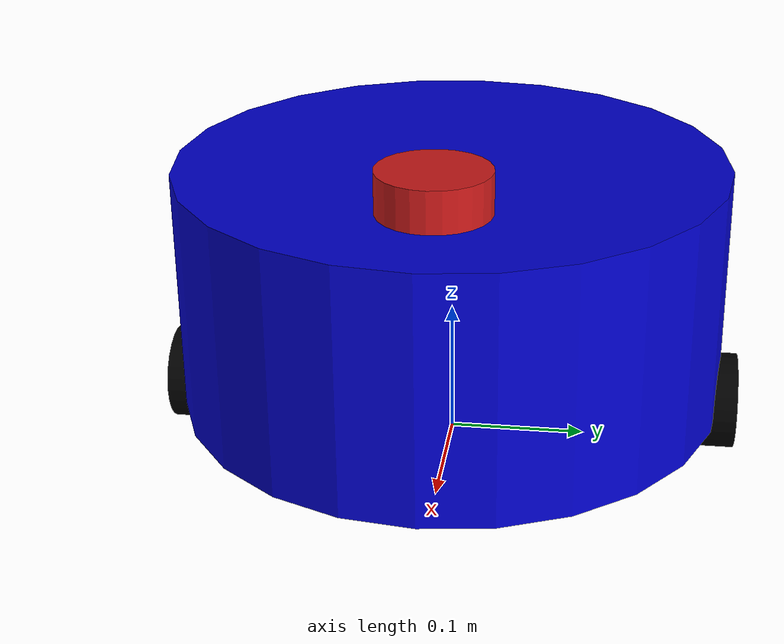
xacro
<?xml version="1.0"?>
<robot xmlns:xacro="http://www.ros.org/wiki/xacro" name="voice_nav_robot">
  <xacro:arg name="controllers_file" default="" />
  <xacro:arg name="laser_update_rate" default="10" />

  <!-- 车体参数：X 前方，Y 左方，Z 上方 -->
  <xacro:property name="base_radius" value="0.20" />
  <xacro:property name="base_height" value="0.18" />
  <xacro:property name="wheel_radius" value="0.035" />
  <xacro:property name="wheel_width" value="0.025" />
  <xacro:property name="wheel_y" value="0.20" />
  <xacro:property name="caster_radius" value="0.045" />
  <xacro:property name="laser_radius" value="0.04" />
  <xacro:property name="laser_height" value="0.05" />

  <xacro:property name="base_mass" value="5.0" />
  <xacro:property name="wheel_mass" value="0.25" />
  <xacro:property name="caster_mass" value="0.20" />
  <xacro:property name="laser_mass" value="0.10" />
  <xacro:property name="base_com_x" value="-0.02" />

  <material name="blue">
    <color rgba="0 0 0.8 1" />
  </material>
  <material name="black">
    <color rgba="0 0 0 1" />
  </material>
  <material name="red">
    <color rgba="0.8 0.1 0.1 1" />
  </material>

  <!-- TF 根：地面投影坐标系 -->
  <link name="base_footprint" />
  <joint name="base_footprint_to_base_link" type="fixed">
    <parent link="base_footprint" />
    <child link="base_link" />
    <origin xyz="0 0 ${wheel_radius}" />
  </joint>

  <!-- 主车身 -->
  <link name="base_link">
    <visual>
      <origin xyz="0 0 ${base_height / 2}" />
      <geometry>
        <cylinder radius="${base_radius}" length="${base_height}" />
      </geometry>
      <material name="blue" />
    </visual>
    <collision>
      <origin xyz="0 0 ${base_height / 2}" />
      <geometry>
        <cylinder radius="${base_radius}" length="${base_height}" />
      </geometry>
    </collision>
    <inertial>
      <origin xyz="${base_com_x} 0 ${base_height / 2}" />
      <mass value="${base_mass}" />
      <inertia
        ixx="${base_mass * (3 * base_radius**2 + base_height**2) / 12}"
        ixy="0"
        ixz="0"
        iyy="${base_mass * (3 * base_radius**2 + base_height**2) / 12}"
        iyz="0"
        izz="${base_mass * base_radius**2 / 2}" />
    </inertial>
  </link>

  <!-- 左右两个驱动轮；轮轴沿 Y，关节可连续旋转 -->
  <xacro:macro name="drive_wheel" params="side y">
    <link name="${side}_wheel">
      <visual>
        <origin rpy="1.5708 0 0" />
        <geometry>
          <cylinder radius="${wheel_radius}" length="${wheel_width}" />
        </geometry>
        <material name="black" />
      </visual>
      <collision>
        <origin rpy="1.5708 0 0" />
        <geometry>
          <cylinder radius="${wheel_radius}" length="${wheel_width}" />
        </geometry>
      </collision>
      <inertial>
        <origin xyz="0 0 0" />
        <mass value="${wheel_mass}" />
        <inertia
          ixx="${wheel_mass * (3 * wheel_radius**2 + wheel_width**2) / 12}"
          ixy="0"
          ixz="0"
          iyy="${wheel_mass * wheel_radius**2 / 2}"
          iyz="0"
          izz="${wheel_mass * (3 * wheel_radius**2 + wheel_width**2) / 12}" />
      </inertial>
    </link>
    <joint name="${side}_wheel_joint" type="continuous">
      <parent link="base_link" />
      <child link="${side}_wheel" />
      <origin xyz="0 ${y} 0" />
      <axis xyz="0 1 0" />
      <limit effort="5.0" velocity="20.0" />
      <dynamics damping="0.1" friction="0.0" />
    </joint>
  </xacro:macro>

  <xacro:drive_wheel side="left" y="${wheel_y}" />
  <xacro:drive_wheel side="right" y="-${wheel_y}" />

  <!-- 后置万向支撑轮（caster 不参与驱动） -->
  <link name="caster_link">
    <visual>
      <origin xyz="0 0 ${caster_radius}" />
      <geometry>
        <sphere radius="${caster_radius}" />
      </geometry>
      <material name="black" />
    </visual>
    <collision>
      <origin xyz="0 0 ${caster_radius}" />
      <geometry>
        <sphere radius="${caster_radius}" />
      </geometry>
    </collision>
    <inertial>
      <origin xyz="0 0 ${caster_radius}" />
      <mass value="${caster_mass}" />
      <inertia
        ixx="${caster_mass * (2 * caster_radius**2) / 5}"
        ixy="0"
        ixz="0"
        iyy="${caster_mass * (2 * caster_radius**2) / 5}"
        iyz="0"
        izz="${caster_mass * (2 * caster_radius**2) / 5}" />
    </inertial>
  </link>
  <joint name="caster_joint" type="fixed">
    <parent link="base_link" />
    <child link="caster_link" />
    <origin xyz="-${base_radius * 0.65} 0 -${wheel_radius}" />
  </joint>

  <gazebo reference="caster_link">
    <mu1>0.001</mu1>
    <mu2>0.001</mu2>
  </gazebo>

  <!-- 激光雷达 -->
  <link name="laser_link">
    <visual>
      <origin xyz="0 0 ${laser_height / 2}" />
      <geometry>
        <cylinder radius="${laser_radius}" length="${laser_height}" />
      </geometry>
      <material name="red" />
    </visual>
    <collision>
      <origin xyz="0 0 ${laser_height / 2}" />
      <geometry>
        <cylinder radius="${laser_radius}" length="${laser_height}" />
      </geometry>
    </collision>
    <inertial>
      <origin xyz="0 0 ${laser_height / 2}" />
      <mass value="${laser_mass}" />
      <inertia
        ixx="${laser_mass * (3 * laser_radius**2 + laser_height**2) / 12}"
        ixy="0"
        ixz="0"
        iyy="${laser_mass * (3 * laser_radius**2 + laser_height**2) / 12}"
        iyz="0"
        izz="${laser_mass * laser_radius**2 / 2}" />
    </inertial>
  </link>
  <joint name="laser_joint" type="fixed">
    <parent link="base_link" />
    <child link="laser_link" />
    <origin xyz="0.10 0 0.16" />
  </joint>

  <gazebo reference="laser_link">
    <sensor name="laser" type="gpu_lidar">
      <pose>0 0 0 0 0 0</pose>
      <topic>/scan</topic>
      <gz_frame_id>laser_link</gz_frame_id>
      <always_on>true</always_on>
      <update_rate>$(arg laser_update_rate)</update_rate>
      <lidar>
        <scan>
          <horizontal>
            <samples>360</samples>
            <resolution>1</resolution>
            <min_angle>-3.141592653589793</min_angle>
            <max_angle>3.141592653589793</max_angle>
          </horizontal>
          <vertical>
            <samples>1</samples>
            <resolution>1</resolution>
            <min_angle>0</min_angle>
            <max_angle>0</max_angle>
          </vertical>
        </scan>
        <range>
          <min>0.05</min>
          <max>8.0</max>
          <resolution>0.01</resolution>
        </range>
      </lidar>
    </sensor>
  </gazebo>

  <ros2_control name="GazeboSimSystem" type="system">
    <hardware>
      <plugin>gz_ros2_control/GazeboSimSystem</plugin>
    </hardware>
    <joint name="left_wheel_joint">
      <command_interface name="velocity">
        <param name="min">-20.0</param>
        <param name="max">20.0</param>
      </command_interface>
      <state_interface name="position" />
      <state_interface name="velocity" />
    </joint>
    <joint name="right_wheel_joint">
      <command_interface name="velocity">
        <param name="min">-20.0</param>
        <param name="max">20.0</param>
      </command_interface>
      <state_interface name="position" />
      <state_interface name="velocity" />
    </joint>
  </ros2_control>

  <gazebo>
    <plugin
      filename="libgz_ros2_control-system.so"
      name="gz_ros2_control::GazeboSimROS2ControlPlugin">
      <parameters>$(arg controllers_file)</parameters>
      <hold_joints>true</hold_joints>
    </plugin>
  </gazebo>

</robot>
